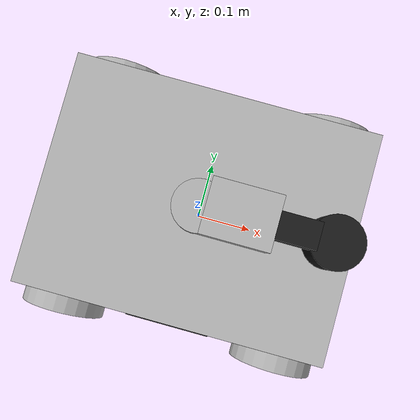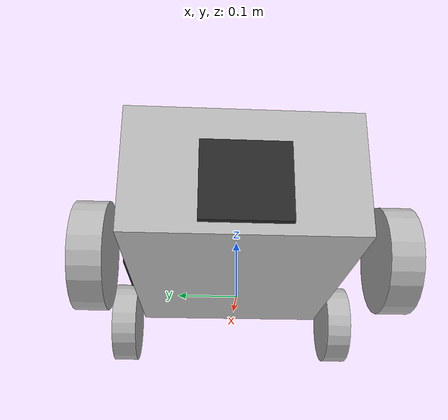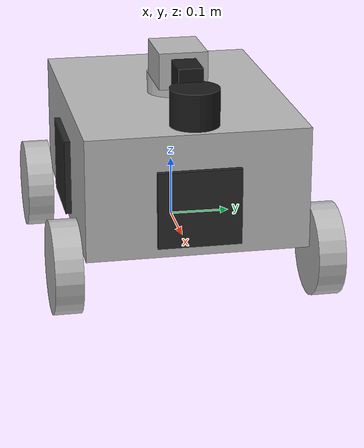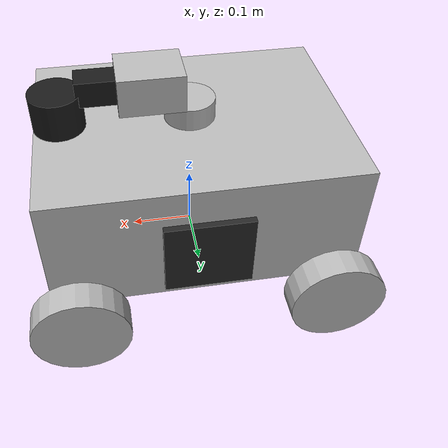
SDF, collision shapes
<?xml version="1.0" ?>
<sdf version="1.7">
  <model name="mecanum_robot" xmlns:gz="http://gazebosim.org/schema">

    <!-- ========== rmoss 风格: chassis origin 在轮轴高度 ========== -->

    <!-- BASE FOOTPRINT (虚拟链接, 用于里程计) -->
    <link name="body">
      <inertial>
        <mass>0.001</mass>
        <inertia>
          <ixx>0.001</ixx>
          <iyy>0.001</iyy>
          <izz>0.001</izz>
        </inertia>
      </inertial>
    </link>

    <!-- CHASSIS (origin 在轮轴高度, mesh 从底部向上渲染) -->
    <link name="chassis">
      <pose relative_to="body">0 0 0 0 0 0</pose>
      <inertial>
        <pose>0 0 0.12 0 0 0</pose>
        <mass>15.0</mass>
        <inertia>
          <ixx>0.295</ixx>
          <iyy>0.645</iyy>
          <izz>0.850</izz>
        </inertia>
      </inertial>
      <visual name="chassis_visual">
        <geometry>
          <mesh>
            <uri>model://mecanum_car/meshes/chassis_base.dae</uri>
          </mesh>
        </geometry>
      </visual>
      <collision name="chassis_collision">
        <pose>0 0 0.12 0 0 0</pose>
        <geometry>
          <box>
            <size>0.48 0.36 0.20</size>
          </box>
        </geometry>
      </collision>

      <!-- 底盘 IMU 传感器 -->
      <sensor name="chassis_imu" type="imu">
        <pose>0 0 0.12 0 0 0</pose>
        <update_rate>200</update_rate>
        <always_on>true</always_on>
        <topic>chassis/imu</topic>
        <imu>
          <angular_velocity>
            <x><noise type="gaussian"><mean>0.0</mean><stddev>2e-4</stddev></noise></x>
            <y><noise type="gaussian"><mean>0.0</mean><stddev>2e-4</stddev></noise></y>
            <z><noise type="gaussian"><mean>0.0</mean><stddev>2e-4</stddev></noise></z>
          </angular_velocity>
          <linear_acceleration>
            <x><noise type="gaussian"><mean>0.0</mean><stddev>1.7e-2</stddev></noise></x>
            <y><noise type="gaussian"><mean>0.0</mean><stddev>1.7e-2</stddev></noise></y>
            <z><noise type="gaussian"><mean>0.0</mean><stddev>1.7e-2</stddev></noise></z>
          </linear_acceleration>
        </imu>
      </sensor>
    </link>

    <joint name="body_to_chassis" type="fixed">
      <parent>body</parent>
      <child>chassis</child>
    </joint>

    <!-- ========== 装甲板模块 (rmoss rm21_armor_module 风格, 竖灯条) ========== -->

    <!-- 前装甲板 (+X 面) -->
    <link name="armor_front">
      <pose relative_to="chassis">0.243 0 0.10 0 0 0</pose>
      <inertial>
        <mass>0.05</mass>
        <inertia>
          <ixx>0.00001</ixx><iyy>0.00001</iyy><izz>0.00001</izz>
        </inertia>
      </inertial>
      <visual name="armor_visual">
        <geometry>
          <box><size>0.012 0.135 0.125</size></box>
        </geometry>
        <material>
          <ambient>0.15 0.15 0.15 1</ambient>
          <diffuse>0.15 0.15 0.15 1</diffuse>
        </material>
      </visual>
      <visual name="light_bar_left">
        <pose>0.007 0.060 0 0 0 0</pose>
        <geometry>
          <box><size>0.006 0.010 0.100</size></box>
        </geometry>
        <material>
          <ambient>1.0 0.0 0.0 1</ambient>
          <diffuse>1.0 0.0 0.0 1</diffuse>
          <emissive>0.8 0.0 0.0 1</emissive>
        </material>
      </visual>
      <visual name="light_bar_right">
        <pose>0.007 -0.060 0 0 0 0</pose>
        <geometry>
          <box><size>0.006 0.010 0.100</size></box>
        </geometry>
        <material>
          <ambient>1.0 0.0 0.0 1</ambient>
          <diffuse>1.0 0.0 0.0 1</diffuse>
          <emissive>0.8 0.0 0.0 1</emissive>
        </material>
      </visual>
      <collision name="armor_collision">
        <geometry>
          <box><size>0.012 0.135 0.125</size></box>
        </geometry>
      </collision>
    </link>
    <joint name="armor_front_joint" type="fixed">
      <parent>chassis</parent>
      <child>armor_front</child>
    </joint>

    <!-- 后装甲板 (-X 面) -->
    <link name="armor_rear">
      <pose relative_to="chassis">-0.243 0 0.10 0 0 0</pose>
      <inertial>
        <mass>0.05</mass>
        <inertia>
          <ixx>0.00001</ixx><iyy>0.00001</iyy><izz>0.00001</izz>
        </inertia>
      </inertial>
      <visual name="armor_visual">
        <geometry>
          <box><size>0.012 0.135 0.125</size></box>
        </geometry>
        <material>
          <ambient>0.15 0.15 0.15 1</ambient>
          <diffuse>0.15 0.15 0.15 1</diffuse>
        </material>
      </visual>
      <visual name="light_bar_left">
        <pose>-0.007 0.060 0 0 0 0</pose>
        <geometry>
          <box><size>0.006 0.010 0.100</size></box>
        </geometry>
        <material>
          <ambient>1.0 0.0 0.0 1</ambient>
          <diffuse>1.0 0.0 0.0 1</diffuse>
          <emissive>0.8 0.0 0.0 1</emissive>
        </material>
      </visual>
      <visual name="light_bar_right">
        <pose>-0.007 -0.060 0 0 0 0</pose>
        <geometry>
          <box><size>0.006 0.010 0.100</size></box>
        </geometry>
        <material>
          <ambient>1.0 0.0 0.0 1</ambient>
          <diffuse>1.0 0.0 0.0 1</diffuse>
          <emissive>0.8 0.0 0.0 1</emissive>
        </material>
      </visual>
      <collision name="armor_collision">
        <geometry>
          <box><size>0.012 0.135 0.125</size></box>
        </geometry>
      </collision>
    </link>
    <joint name="armor_rear_joint" type="fixed">
      <parent>chassis</parent>
      <child>armor_rear</child>
    </joint>

    <!-- 左装甲板 (+Y 面) -->
    <link name="armor_left">
      <pose relative_to="chassis">0 0.184 0.10 0 0 0</pose>
      <inertial>
        <mass>0.05</mass>
        <inertia>
          <ixx>0.00001</ixx><iyy>0.00001</iyy><izz>0.00001</izz>
        </inertia>
      </inertial>
      <visual name="armor_visual">
        <geometry>
          <box><size>0.135 0.012 0.125</size></box>
        </geometry>
        <material>
          <ambient>0.15 0.15 0.15 1</ambient>
          <diffuse>0.15 0.15 0.15 1</diffuse>
        </material>
      </visual>
      <visual name="light_bar_front">
        <pose>0.060 0.007 0 0 0 0</pose>
        <geometry>
          <box><size>0.010 0.006 0.100</size></box>
        </geometry>
        <material>
          <ambient>1.0 0.0 0.0 1</ambient>
          <diffuse>1.0 0.0 0.0 1</diffuse>
          <emissive>0.8 0.0 0.0 1</emissive>
        </material>
      </visual>
      <visual name="light_bar_back">
        <pose>-0.060 0.007 0 0 0 0</pose>
        <geometry>
          <box><size>0.010 0.006 0.100</size></box>
        </geometry>
        <material>
          <ambient>1.0 0.0 0.0 1</ambient>
          <diffuse>1.0 0.0 0.0 1</diffuse>
          <emissive>0.8 0.0 0.0 1</emissive>
        </material>
      </visual>
      <collision name="armor_collision">
        <geometry>
          <box><size>0.135 0.012 0.125</size></box>
        </geometry>
      </collision>
    </link>
    <joint name="armor_left_joint" type="fixed">
      <parent>chassis</parent>
      <child>armor_left</child>
    </joint>

    <!-- 右装甲板 (-Y 面) -->
    <link name="armor_right">
      <pose relative_to="chassis">0 -0.184 0.10 0 0 0</pose>
      <inertial>
        <mass>0.05</mass>
        <inertia>
          <ixx>0.00001</ixx><iyy>0.00001</iyy><izz>0.00001</izz>
        </inertia>
      </inertial>
      <visual name="armor_visual">
        <geometry>
          <box><size>0.135 0.012 0.125</size></box>
        </geometry>
        <material>
          <ambient>0.15 0.15 0.15 1</ambient>
          <diffuse>0.15 0.15 0.15 1</diffuse>
        </material>
      </visual>
      <visual name="light_bar_front">
        <pose>0.060 -0.007 0 0 0 0</pose>
        <geometry>
          <box><size>0.010 0.006 0.100</size></box>
        </geometry>
        <material>
          <ambient>1.0 0.0 0.0 1</ambient>
          <diffuse>1.0 0.0 0.0 1</diffuse>
          <emissive>0.8 0.0 0.0 1</emissive>
        </material>
      </visual>
      <visual name="light_bar_back">
        <pose>-0.060 -0.007 0 0 0 0</pose>
        <geometry>
          <box><size>0.010 0.006 0.100</size></box>
        </geometry>
        <material>
          <ambient>1.0 0.0 0.0 1</ambient>
          <diffuse>1.0 0.0 0.0 1</diffuse>
          <emissive>0.8 0.0 0.0 1</emissive>
        </material>
      </visual>
      <collision name="armor_collision">
        <geometry>
          <box><size>0.135 0.012 0.125</size></box>
        </geometry>
      </collision>
    </link>
    <joint name="armor_right_joint" type="fixed">
      <parent>chassis</parent>
      <child>armor_right</child>
    </joint>

    <!-- ========== 轮子 (rmoss 风格: Z=0, 碰撞/惯量旋转对齐 Y 轴) ========== -->

    <!-- 前左轮 (FL) - 麦轮 left -->
    <link name="front_left_wheel_link">
      <pose relative_to="chassis">0.20 0.21 0 0 0 0</pose>
      <inertial>
        <pose>0 0 0 1.5707 0 0</pose>
        <mass>0.5</mass>
        <inertia>
          <ixx>0.0005</ixx>
          <iyy>0.001</iyy>
          <izz>0.0005</izz>
        </inertia>
      </inertial>
      <visual name="wheel_visual">
        <geometry>
          <mesh>
            <uri>model://mecanum_car/meshes/wheel_left.dae</uri>
          </mesh>
        </geometry>
      </visual>
      <collision name="wheel_collision">
        <pose>0 0 0 1.5707 0 0</pose>
        <geometry>
          <cylinder>
            <radius>0.076</radius>
            <length>0.045</length>
          </cylinder>
        </geometry>
        <surface>
          <friction>
            <ode>
              <mu>1.0</mu>
              <mu2>0.0</mu2>
              <fdir1 gz:expressed_in="chassis">1 -1 0</fdir1>
            </ode>
          </friction>
        </surface>
      </collision>
    </link>
    <joint name="front_left_wheel_joint" type="revolute">
      <parent>chassis</parent>
      <child>front_left_wheel_link</child>
      <axis>
        <xyz>0 1 0</xyz>
      </axis>
    </joint>

    <!-- 前右轮 (FR) - 麦轮 right -->
    <link name="front_right_wheel_link">
      <pose relative_to="chassis">0.20 -0.21 0 0 0 0</pose>
      <inertial>
        <pose>0 0 0 1.5707 0 0</pose>
        <mass>0.5</mass>
        <inertia>
          <ixx>0.0005</ixx>
          <iyy>0.001</iyy>
          <izz>0.0005</izz>
        </inertia>
      </inertial>
      <visual name="wheel_visual">
        <geometry>
          <mesh>
            <uri>model://mecanum_car/meshes/wheel_right.dae</uri>
          </mesh>
        </geometry>
      </visual>
      <collision name="wheel_collision">
        <pose>0 0 0 1.5707 0 0</pose>
        <geometry>
          <cylinder>
            <radius>0.076</radius>
            <length>0.045</length>
          </cylinder>
        </geometry>
        <surface>
          <friction>
            <ode>
              <mu>1.0</mu>
              <mu2>0.0</mu2>
              <fdir1 gz:expressed_in="chassis">1 1 0</fdir1>
            </ode>
          </friction>
        </surface>
      </collision>
    </link>
    <joint name="front_right_wheel_joint" type="revolute">
      <parent>chassis</parent>
      <child>front_right_wheel_link</child>
      <axis>
        <xyz>0 1 0</xyz>
      </axis>
    </joint>

    <!-- 后左轮 (RL) - 麦轮 right (对角线对称) -->
    <link name="rear_left_wheel_link">
      <pose relative_to="chassis">-0.20 0.21 0 0 0 0</pose>
      <inertial>
        <pose>0 0 0 1.5707 0 0</pose>
        <mass>0.5</mass>
        <inertia>
          <ixx>0.0005</ixx>
          <iyy>0.001</iyy>
          <izz>0.0005</izz>
        </inertia>
      </inertial>
      <visual name="wheel_visual">
        <geometry>
          <mesh>
            <uri>model://mecanum_car/meshes/wheel_right.dae</uri>
          </mesh>
        </geometry>
      </visual>
      <collision name="wheel_collision">
        <pose>0 0 0 1.5707 0 0</pose>
        <geometry>
          <cylinder>
            <radius>0.076</radius>
            <length>0.045</length>
          </cylinder>
        </geometry>
        <surface>
          <friction>
            <ode>
              <mu>1.0</mu>
              <mu2>0.0</mu2>
              <fdir1 gz:expressed_in="chassis">1 1 0</fdir1>
            </ode>
          </friction>
        </surface>
      </collision>
    </link>
    <joint name="rear_left_wheel_joint" type="revolute">
      <parent>chassis</parent>
      <child>rear_left_wheel_link</child>
      <axis>
        <xyz>0 1 0</xyz>
      </axis>
    </joint>

    <!-- 后右轮 (RR) - 麦轮 left (对角线对称) -->
    <link name="rear_right_wheel_link">
      <pose relative_to="chassis">-0.20 -0.21 0 0 0 0</pose>
      <inertial>
        <pose>0 0 0 1.5707 0 0</pose>
        <mass>0.5</mass>
        <inertia>
          <ixx>0.0005</ixx>
          <iyy>0.001</iyy>
          <izz>0.0005</izz>
        </inertia>
      </inertial>
      <visual name="wheel_visual">
        <geometry>
          <mesh>
            <uri>model://mecanum_car/meshes/wheel_left.dae</uri>
          </mesh>
        </geometry>
      </visual>
      <collision name="wheel_collision">
        <pose>0 0 0 1.5707 0 0</pose>
        <geometry>
          <cylinder>
            <radius>0.076</radius>
            <length>0.045</length>
          </cylinder>
        </geometry>
        <surface>
          <friction>
            <ode>
              <mu>1.0</mu>
              <mu2>0.0</mu2>
              <fdir1 gz:expressed_in="chassis">1 -1 0</fdir1>
            </ode>
          </friction>
        </surface>
      </collision>
    </link>
    <joint name="rear_right_wheel_joint" type="revolute">
      <parent>chassis</parent>
      <child>rear_right_wheel_link</child>
      <axis>
        <xyz>0 1 0</xyz>
      </axis>
    </joint>

    <!-- ========== LIDAR ========== -->
    <link name="livox_lidar">
      <pose relative_to="chassis">0.20 0 0.253 0 0 0</pose>
      <inertial>
        <mass>0.2</mass>
        <inertia>
          <ixx>0.001</ixx>
          <iyy>0.001</iyy>
          <izz>0.001</izz>
        </inertia>
      </inertial>
      <visual name="lidar_visual">
        <geometry>
          <cylinder>
            <radius>0.04</radius>
            <length>0.06</length>
          </cylinder>
        </geometry>
        <material>
          <ambient>0.1 0.1 0.1 1</ambient>
          <diffuse>0.1 0.1 0.1 1</diffuse>
        </material>
      </visual>
      <collision name="lidar_collision">
        <geometry>
          <cylinder>
            <radius>0.04</radius>
            <length>0.06</length>
          </cylinder>
        </geometry>
      </collision>

      <!-- LIDAR SENSOR (RGL) -->
      <sensor name="RGLLidar" type="custom">
        <plugin filename="RGLServerPluginInstance" name="rgl::RGLServerPluginInstance">
          <range>
            <min>0.05</min>
            <max>245</max>
          </range>
          <update_rate>10</update_rate>
          <update_on_paused_sim>false</update_on_paused_sim>
          <topic>livox/lidar</topic>
          <frame>livox_lidar</frame>
          <pattern_preset_path>__RM_SIM_26_PATTERN_PRESET_PATH__</pattern_preset_path>
        </plugin>
      </sensor>

      <!-- IMU SENSOR (Livox 内置) -->
      <sensor name="livox_lidar_imu" type="imu">
        <update_rate>100</update_rate>
        <always_on>true</always_on>
        <topic>/livox/imu</topic>
        <frame>livox_lidar</frame>
        <imu>
          <angular_velocity>
            <x><noise type="gaussian"><mean>0.0</mean><stddev>2e-4</stddev></noise></x>
            <y><noise type="gaussian"><mean>0.0</mean><stddev>2e-4</stddev></noise></y>
            <z><noise type="gaussian"><mean>0.0</mean><stddev>2e-4</stddev></noise></z>
          </angular_velocity>
          <linear_acceleration>
            <x><noise type="gaussian"><mean>0.0</mean><stddev>1.7e-2</stddev></noise></x>
            <y><noise type="gaussian"><mean>0.0</mean><stddev>1.7e-2</stddev></noise></y>
            <z><noise type="gaussian"><mean>0.0</mean><stddev>1.7e-2</stddev></noise></z>
          </linear_acceleration>
        </imu>
      </sensor>
    </link>
    <joint name="lidar_joint" type="fixed">
      <parent>chassis</parent>
      <child>livox_lidar</child>
    </joint>

    <!-- ========== 云台模块 ========== -->

    <!-- 云台偏航轴 (Yaw) -->
    <link name="gimbal_yaw">
      <pose relative_to="chassis">0 0 0.205 0 0 0</pose>
      <inertial>
        <mass>1.0</mass>
        <inertia>
          <ixx>0.003</ixx>
          <iyy>0.003</iyy>
          <izz>0.003</izz>
        </inertia>
      </inertial>
      <visual name="gimbal_yaw_visual">
        <geometry>
          <mesh>
            <uri>model://mecanum_car/meshes/gimbal_yaw.dae</uri>
          </mesh>
        </geometry>
      </visual>
      <collision name="gimbal_yaw_collision">
        <geometry>
          <cylinder>
            <radius>0.04</radius>
            <length>0.10</length>
          </cylinder>
        </geometry>
      </collision>
    </link>
    <joint name="gimbal_yaw_joint" type="revolute">
      <parent>chassis</parent>
      <child>gimbal_yaw</child>
      <axis>
        <xyz>0 0 1</xyz>
        <limit>
          <lower>-3.14159</lower>
          <upper>3.14159</upper>
          <effort>10</effort>
          <velocity>3.14</velocity>
        </limit>
        <dynamics>
          <damping>0.1</damping>
          <friction>0.01</friction>
        </dynamics>
      </axis>
    </joint>

    <!-- 云台俯仰轴 (Pitch) -->
    <link name="gimbal_pitch">
      <pose relative_to="gimbal_yaw">0.06 0 0.08 0 0 0</pose>
      <inertial>
        <mass>0.5</mass>
        <inertia>
          <ixx>0.001</ixx>
          <iyy>0.002</iyy>
          <izz>0.002</izz>
        </inertia>
      </inertial>
      <visual name="gimbal_pitch_visual">
        <geometry>
          <mesh>
            <uri>model://mecanum_car/meshes/gimbal_pitch.dae</uri>
          </mesh>
        </geometry>
      </visual>
      <collision name="gimbal_pitch_collision">
        <geometry>
          <box>
            <size>0.10 0.08 0.06</size>
          </box>
        </geometry>
      </collision>
    </link>
    <joint name="gimbal_pitch_joint" type="revolute">
      <parent>gimbal_yaw</parent>
      <child>gimbal_pitch</child>
      <axis>
        <xyz>0 -1 0</xyz>
        <limit>
          <lower>-0.785398</lower>
          <upper>0.785398</upper>
          <effort>10</effort>
          <velocity>2.0</velocity>
        </limit>
        <dynamics>
          <damping>0.1</damping>
          <friction>0.01</friction>
        </dynamics>
      </axis>
    </joint>

    <!-- 摄像头 -->
    <link name="camera">
      <pose relative_to="gimbal_pitch">0.08 0 0 0 0 0</pose>
      <inertial>
        <mass>0.1</mass>
        <inertia>
          <ixx>0.0001</ixx>
          <iyy>0.0001</iyy>
          <izz>0.0001</izz>
        </inertia>
      </inertial>
      <visual name="camera_visual">
        <geometry>
          <box>
            <size>0.06 0.04 0.04</size>
          </box>
        </geometry>
        <material>
          <ambient>0.1 0.1 0.1 1</ambient>
          <diffuse>0.1 0.1 0.1 1</diffuse>
          <specular>0.1 0.1 0.1 1</specular>
        </material>
      </visual>
      <collision name="camera_collision">
        <geometry>
          <box>
            <size>0.06 0.04 0.04</size>
          </box>
        </geometry>
      </collision>
      <sensor name="camera" type="camera">
        <update_rate>30</update_rate>
        <camera>
          <horizontal_fov>1.047</horizontal_fov>
          <image>
            <width>640</width>
            <height>480</height>
            <format>R8G8B8</format>
          </image>
          <clip>
            <near>0.1</near>
            <far>100</far>
          </clip>
        </camera>
      </sensor>
    </link>
    <joint name="camera_joint" type="fixed">
      <parent>gimbal_pitch</parent>
      <child>camera</child>
    </joint>

    <!-- ========== 插件 ========== -->

    <!-- MECANUM DRIVE -->
    <plugin filename="gz-sim-mecanum-drive-system" name="gz::sim::systems::MecanumDrive">
      <front_left_joint>front_left_wheel_joint</front_left_joint>
      <front_right_joint>front_right_wheel_joint</front_right_joint>
      <back_left_joint>rear_left_wheel_joint</back_left_joint>
      <back_right_joint>rear_right_wheel_joint</back_right_joint>
      <wheel_separation>0.42</wheel_separation>
      <wheelbase>0.40</wheelbase>
      <wheel_radius>0.076</wheel_radius>
      <topic>/cmd_vel</topic>
      <tf_topic>/tf</tf_topic>
      <frame_id>odom_gt</frame_id>
      <child_frame_id>body</child_frame_id>
    </plugin>

    <!-- 云台控制 -->
    <plugin filename="gz-sim-joint-position-controller-system" name="gz::sim::systems::JointPositionController">
      <joint_name>gimbal_yaw_joint</joint_name>
      <topic>/gimbal/yaw/cmd_pos</topic>
      <p_gain>10</p_gain>
      <i_gain>0.1</i_gain>
      <d_gain>0.5</d_gain>
    </plugin>

    <plugin filename="gz-sim-joint-position-controller-system" name="gz::sim::systems::JointPositionController">
      <joint_name>gimbal_pitch_joint</joint_name>
      <topic>/gimbal/pitch/cmd_pos</topic>
      <p_gain>10</p_gain>
      <i_gain>0.1</i_gain>
      <d_gain>0.5</d_gain>
    </plugin>

    <plugin filename="gz-sim-joint-state-publisher-system" name="gz::sim::systems::JointStatePublisher">
      <topic>joint_states</topic>
      <joint_name>front_left_wheel_joint</joint_name>
      <joint_name>front_right_wheel_joint</joint_name>
      <joint_name>rear_left_wheel_joint</joint_name>
      <joint_name>rear_right_wheel_joint</joint_name>
      <joint_name>gimbal_yaw_joint</joint_name>
      <joint_name>gimbal_pitch_joint</joint_name>
    </plugin>

    <!-- Pose Publisher for TF -->
    <plugin filename="gz-sim-pose-publisher-system" name="gz::sim::systems::PosePublisher">
      <publish_link_pose>true</publish_link_pose>
      <publish_collision_pose>false</publish_collision_pose>
      <publish_visual_pose>false</publish_visual_pose>
      <publish_nested_model_pose>true</publish_nested_model_pose>
    </plugin>

  </model>
</sdf>
